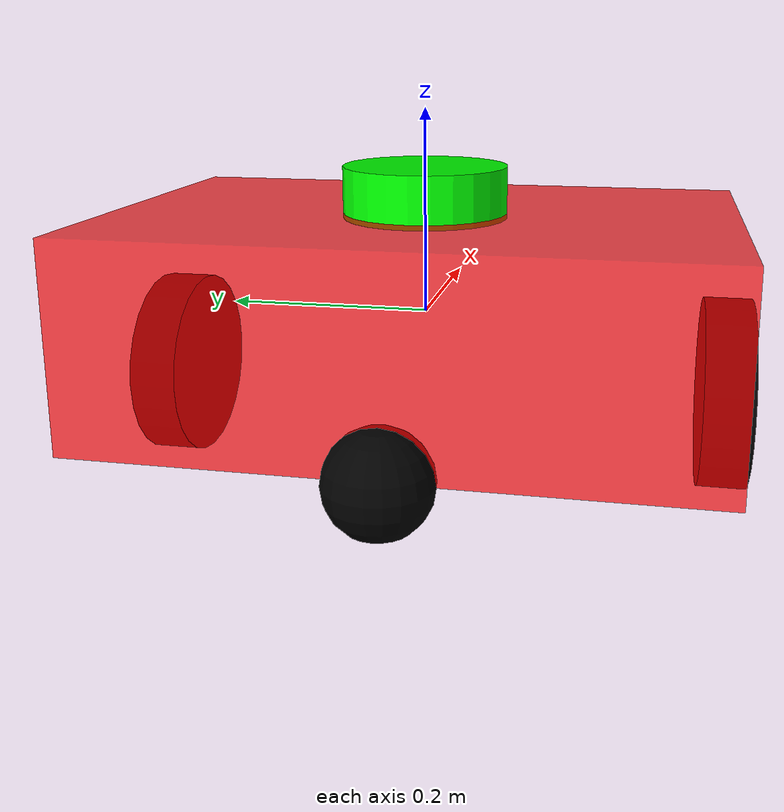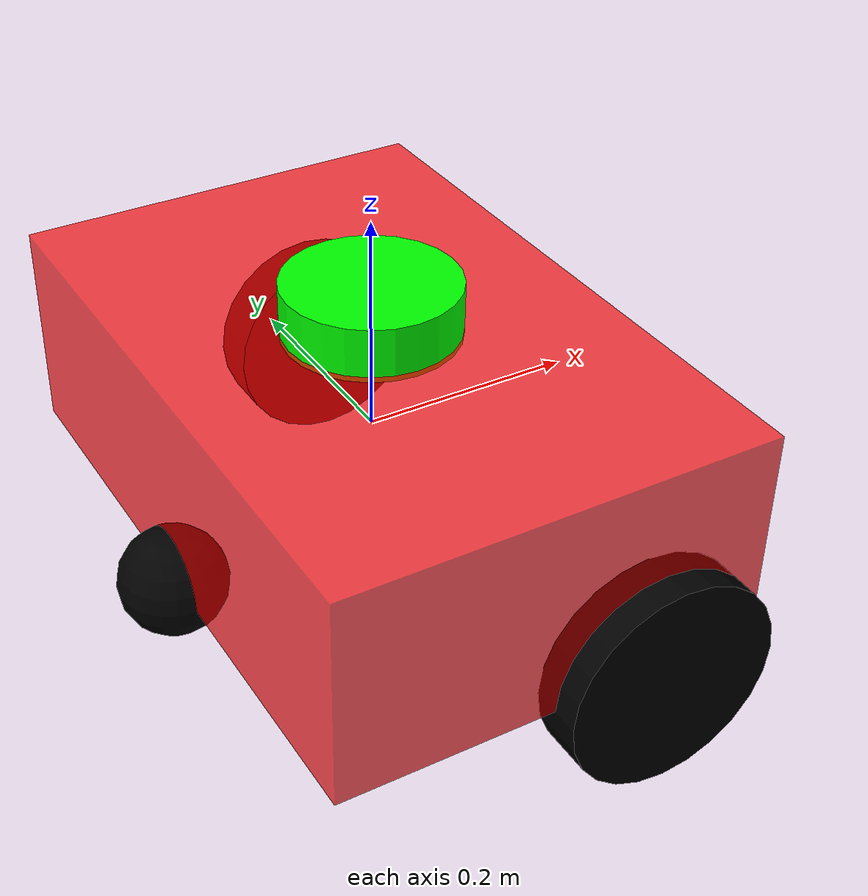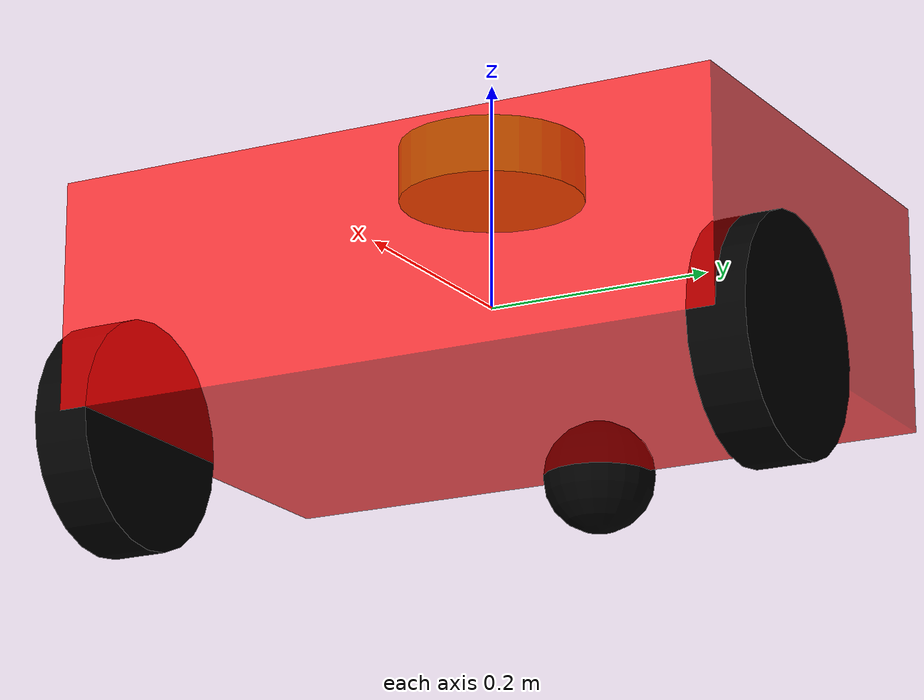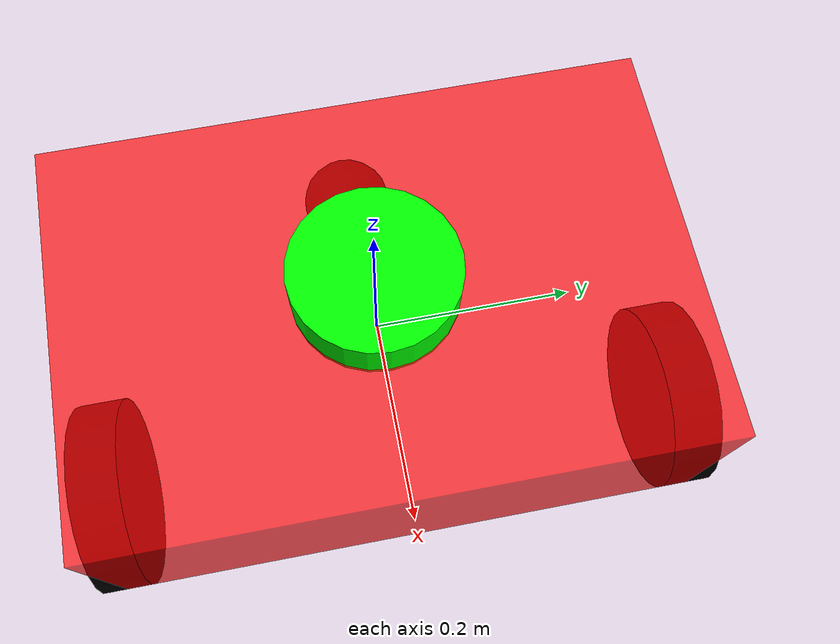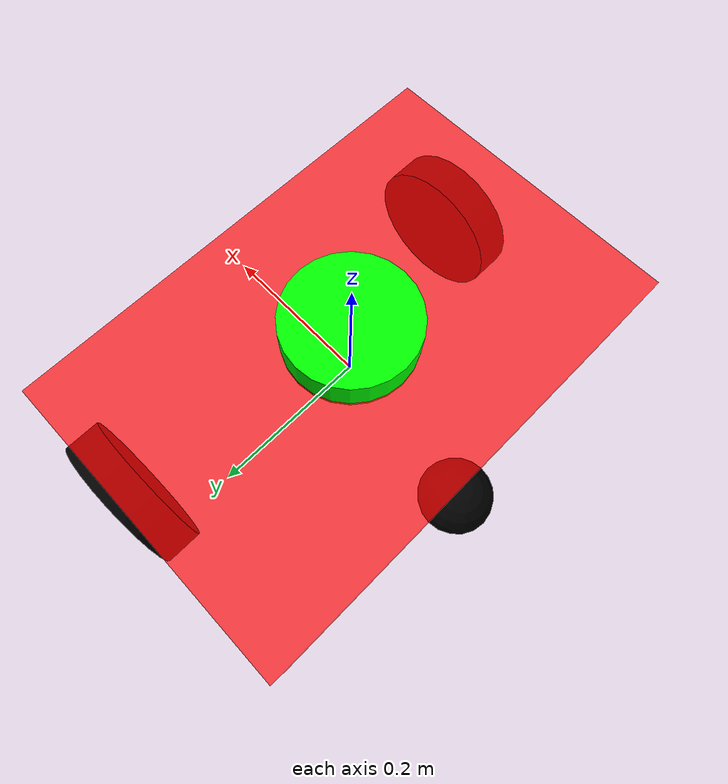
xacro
<robot name="my_turtle" xmlns:xacro="http://ros.org/wiki/xacro">

  <!-- Gazebo plugin for ros2_control -->
  <gazebo>
    <plugin filename="libgazebo_ros2_control.so" name="gazebo_ros2_control">
        <parameters>/home/nitron/roboty_mobilne/install/turtle_go_urdf/share/turtle_go_urdf/config/diff_drive_controller.yaml</parameters>
    </plugin>
  </gazebo>

  <link name="base_link">
    <visual>
      <geometry>
        <box size="0.4 0.6 0.2"/>
      </geometry>
      <material name="red">
        <color rgba="1 0 0 0.7"/>
      </material>
    </visual>
    <collision>
      <geometry>
        <box size="0.4 0.6 0.2"/>
      </geometry>
    </collision>
    <inertial>
      <mass value="10"/>
      <inertia ixx="0.1" ixy="0" ixz="0" iyy="0.1" iyz="0" izz="0.1"/>
    </inertial>
  </link>

  <link name="lidar_link">
    <visual>
      <geometry>
        <cylinder radius="0.08" length="0.05"/>
      </geometry>
      <origin xyz="0 0 0.0" rpy="0 0 0"/>
      <material name="green">
        <color rgba="0 1 0 1"/>
      </material>
    </visual>
    <collision>
      <geometry>
        <cylinder radius="0.08" length="0.05"/>
      </geometry>
    </collision>
    <inertial>
      <mass value="0.2"/>
      <inertia ixx="0.001" ixy="0" ixz="0" iyy="0.001" iyz="0" izz="0.001"/>
    </inertial>
  </link>

  <!-- LIDAR sensor plugin -->
  <gazebo reference="lidar_link">
    <sensor type="gpu_ray" name="lidar_sensor">
      <update_rate>10</update_rate>
      <ray>
        <scan>
          <horizontal>
            <samples>720</samples>
            <resolution>1</resolution>
            <min_angle>-1.5708</min_angle>
            <max_angle>1.5708</max_angle>
          </horizontal>
        </scan>
        <range>
          <min>0.1</min>
          <max>10.0</max>
        </range>
      </ray>
      <plugin name="gazebo_ros_laser" filename="libgazebo_ros_gpu_laser.so">
        <ros_topic>/scan</ros_topic>
        <frame_name>lidar_link</frame_name>
      </plugin>
    </sensor>
  </gazebo>

  <joint name="lidar_joint" type="fixed">
    <parent link="base_link"/>
    <child link="lidar_link"/>
    <origin xyz="0 0 0.12"/>
  </joint>

  <xacro:macro name="wheel" params="name x y">
    <link name="${name}">
      <visual>
        <geometry>
          <cylinder radius="0.1" length="0.05"/>
        </geometry>
        <origin xyz="0 0 0" rpy="1.5708 0 0"/>
        <material name="black">
          <color rgba="0 0 0 1"/>
        </material>
      </visual>
      <collision>
        <geometry>
          <cylinder radius="0.1" length="0.05"/>
        </geometry>
        <origin xyz="0 0 0" rpy="1.5708 0 0"/>
      </collision>
      <inertial>
        <mass value="0.5"/>
        <inertia ixx="0.001" iyy="0.001" izz="0.001" ixy="0" ixz="0" iyz="0"/>
      </inertial>
    </link>

    <joint name="${name}_joint" type="continuous">
      <parent link="base_link"/>
      <child link="${name}"/>
      <origin xyz="${x} ${y} -0.1" rpy="0 0 0"/>
      <axis xyz="0 1 0"/>
    </joint>
  </xacro:macro>

  <xacro:wheel name="left_wheel" x="0.1" y="0.3"/>
  <xacro:wheel name="right_wheel" x="0.1" y="-0.3"/>

  <link name="caster_link">
    <visual>
      <geometry>
        <sphere radius="0.05"/>
      </geometry>
      <origin xyz="-0.1 0 0.0"/>
      <material name="black">
        <color rgba="0 0 0 1"/>
      </material>
    </visual>
    <collision>
      <geometry>
        <sphere radius="0.05"/>
      </geometry>
      <origin xyz="-0.1 0 0.0"/>
    </collision>
    <inertial>
      <mass value="0.2"/>
      <inertia ixx="0.0001" iyy="0.0001" izz="0.0001" ixy="0" ixz="0" iyz="0"/>
    </inertial>
  </link>

  <joint name="caster_joint" type="fixed">
    <parent link="base_link"/>
    <child link="caster_link"/>
    <origin xyz="-0.1 0 -0.1"/>
  </joint>

  <ros2_control name="MyRobotHardware" type="system">
    <hardware>
      <plugin>gazebo_ros2_control/GazeboSystem</plugin>
    </hardware>

    <joint name="left_wheel_joint">
      <command_interface name="velocity"/>
      <state_interface name="position"/>
      <state_interface name="velocity"/>
    </joint>

    <joint name="right_wheel_joint">
      <command_interface name="velocity"/>
      <state_interface name="position"/>
      <state_interface name="velocity"/>
    </joint>
  </ros2_control>

</robot>
